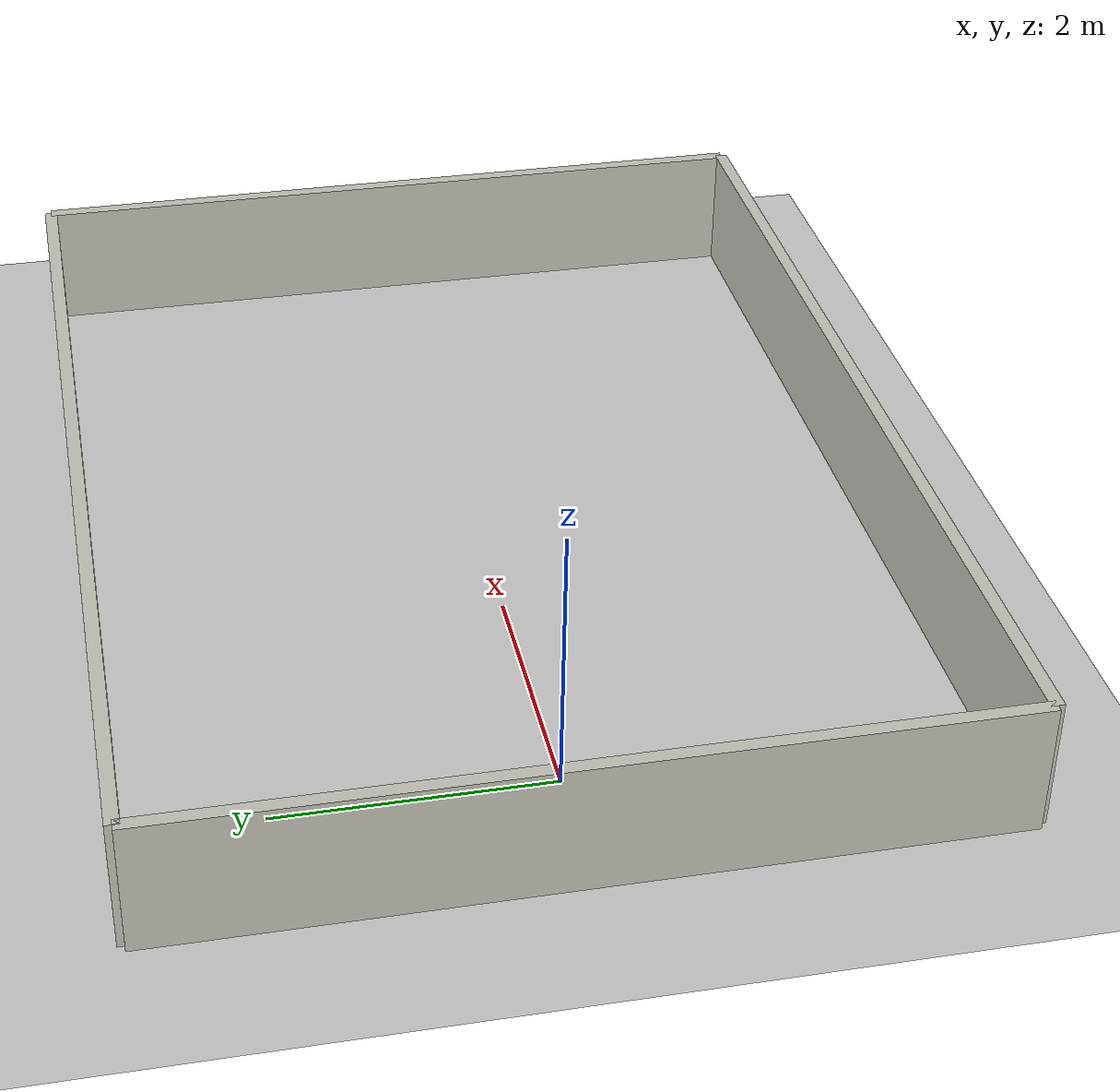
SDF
<?xml version="1.0" ?>
<sdf version="1.6">
  <world name="nav_test_room">

    <plugin name="gazebo_ros_init" filename="libgazebo_ros_init.so">
      <ros>
        <namespace>/</namespace>
      </ros>
    </plugin>

    <plugin name="gazebo_ros_factory" filename="libgazebo_ros_factory.so">
      <ros>
        <namespace>/</namespace>
      </ros>
    </plugin>

    <plugin name="gazebo_ros_state" filename="libgazebo_ros_state.so">
      <ros>
        <namespace>/</namespace>
      </ros>
      <update_rate>20.0</update_rate>
    </plugin>

    <plugin name="trolley_attach_plugin" filename="libtrolley_attach_plugin.so">
      <ros>
        <namespace>/</namespace>
      </ros>
      <robot_model>mecanum_bot</robot_model>
      <robot_link>base_link</robot_link>
      <trolley_model>Trolley</trolley_model>
      <trolley_link>link</trolley_link>
    </plugin>

    <include>
      <uri>model://ground_plane</uri>
    </include>

    <include>
      <uri>model://sun</uri>
    </include>

    <model name="test_room_walls">
      <static>true</static>

      <link name="walls">
        <collision name="north_wall_collision">
          <pose>3.0 3.0 0.5 0 0 0</pose>
          <geometry>
            <box>
              <size>8.0 0.10 1.0</size>
            </box>
          </geometry>
        </collision>
        <visual name="north_wall_visual">
          <pose>3.0 3.0 0.5 0 0 0</pose>
          <geometry>
            <box>
              <size>8.0 0.10 1.0</size>
            </box>
          </geometry>
          <material>
            <ambient>0.78 0.78 0.74 1.0</ambient>
            <diffuse>0.78 0.78 0.74 1.0</diffuse>
          </material>
        </visual>

        <collision name="south_wall_collision">
          <pose>3.0 -3.0 0.5 0 0 0</pose>
          <geometry>
            <box>
              <size>8.0 0.10 1.0</size>
            </box>
          </geometry>
        </collision>
        <visual name="south_wall_visual">
          <pose>3.0 -3.0 0.5 0 0 0</pose>
          <geometry>
            <box>
              <size>8.0 0.10 1.0</size>
            </box>
          </geometry>
          <material>
            <ambient>0.78 0.78 0.74 1.0</ambient>
            <diffuse>0.78 0.78 0.74 1.0</diffuse>
          </material>
        </visual>

        <collision name="west_wall_collision">
          <pose>-1.0 0.0 0.5 0 0 0</pose>
          <geometry>
            <box>
              <size>0.10 6.0 1.0</size>
            </box>
          </geometry>
        </collision>
        <visual name="west_wall_visual">
          <pose>-1.0 0.0 0.5 0 0 0</pose>
          <geometry>
            <box>
              <size>0.10 6.0 1.0</size>
            </box>
          </geometry>
          <material>
            <ambient>0.78 0.78 0.74 1.0</ambient>
            <diffuse>0.78 0.78 0.74 1.0</diffuse>
          </material>
        </visual>

        <collision name="east_wall_collision">
          <pose>7.0 0.0 0.5 0 0 0</pose>
          <geometry>
            <box>
              <size>0.10 6.0 1.0</size>
            </box>
          </geometry>
        </collision>
        <visual name="east_wall_visual">
          <pose>7.0 0.0 0.5 0 0 0</pose>
          <geometry>
            <box>
              <size>0.10 6.0 1.0</size>
            </box>
          </geometry>
          <material>
            <ambient>0.78 0.78 0.74 1.0</ambient>
            <diffuse>0.78 0.78 0.74 1.0</diffuse>
          </material>
        </visual>
      </link>
    </model>

  </world>
</sdf>
